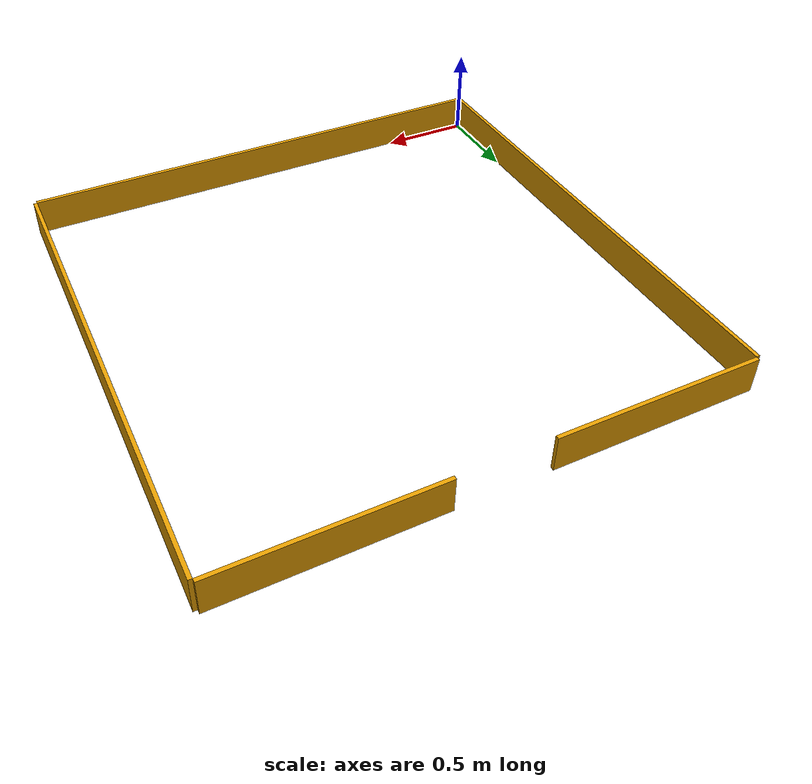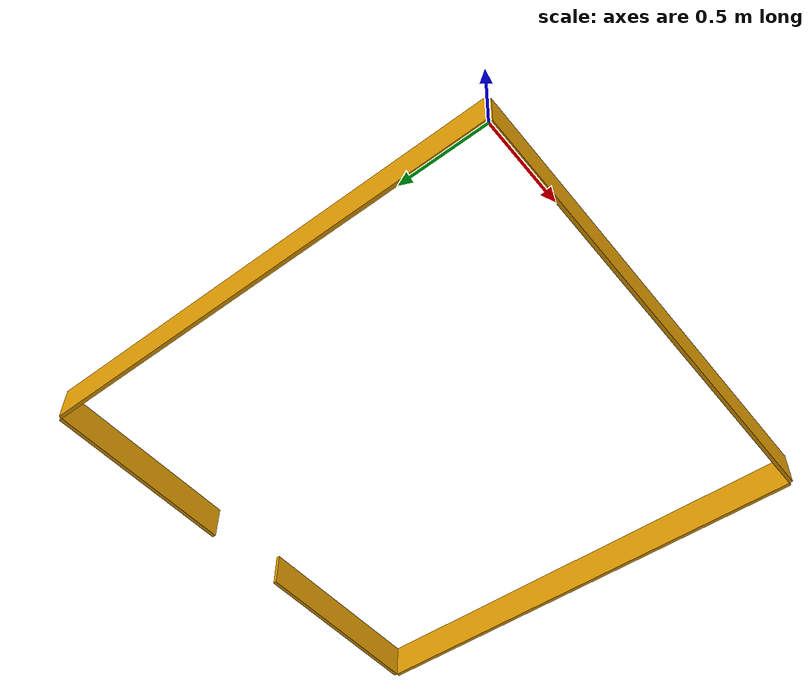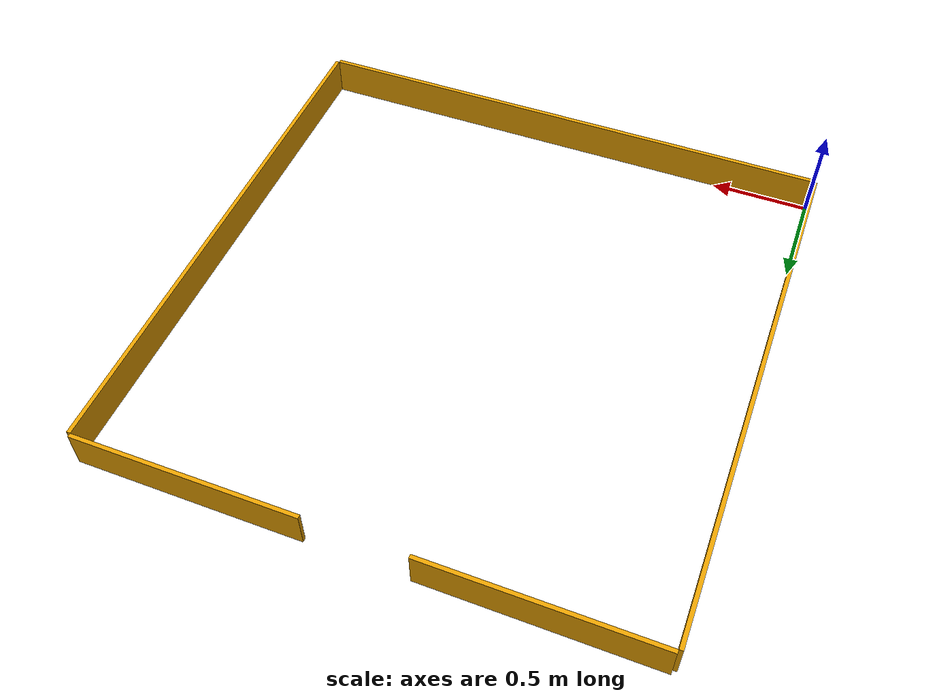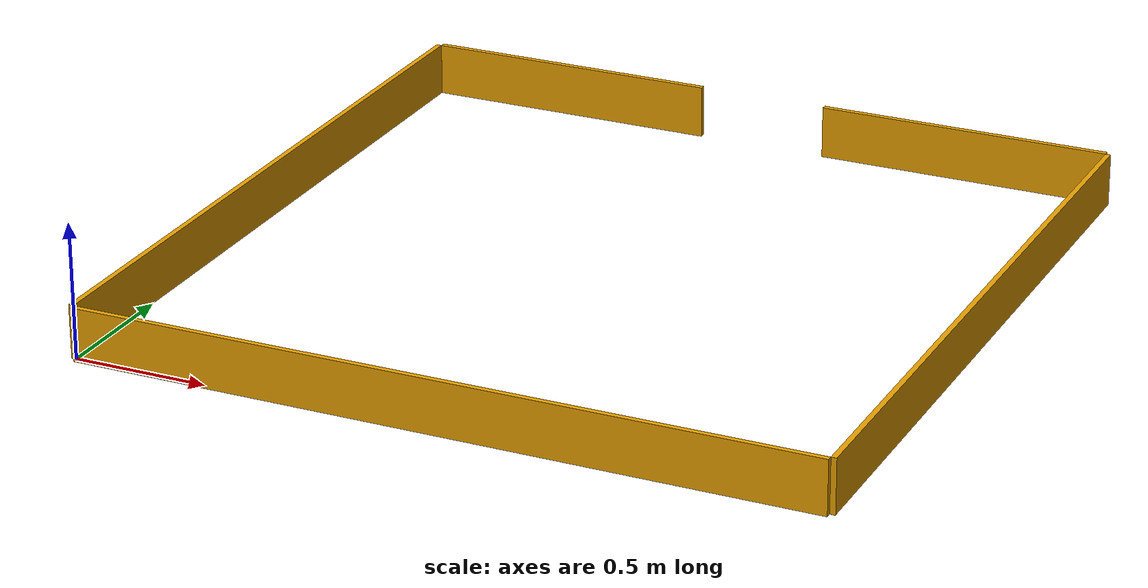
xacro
<?xml version='1.0'?>
<!-- emptyroom_9x9 // URDF MODEL DEFINITION -->

<robot name="emptyroom_9x9" xmlns:xacro="http://www.ros.org/wiki/xacro">

  <xacro:property name="x_dim" value="2.7432" /> <!-- 9ft = 2.7432m -->
  <xacro:property name="y_dim" value="2.7432" />
  <xacro:property name="wall_height" value="0.2" />
  <xacro:property name="wall_thickness" value="0.02" />
  <xacro:property name="exit_width" value="0.5" />

  <xacro:include filename="$(find emptyroom_description)/urdf/emptyroom.gazebo" />

  <link name='walls'>
    <inertial>
      <mass value="0.837"/>
      <inertia
          ixx="0.0007576" ixy="0" ixz="0"
          iyy="0.0015486" iyz="0"
          izz="0.0017524"
      />
    </inertial>

    <collision name='wall_S_collision'>
      <origin xyz="${x_dim/2} ${-wall_thickness/2} ${wall_height/2}" rpy="0 0 0"/>
      <geometry>
        <box size="${x_dim} ${wall_thickness} ${wall_height}"/>
      </geometry>
    </collision>
    <visual name='wall_S_visual'>
      <origin xyz="${x_dim/2} ${-wall_thickness/2} ${wall_height/2}" rpy="0 0 0"/>
      <geometry>
        <box size="${x_dim} ${wall_thickness} ${wall_height}"/>
      </geometry>
    </visual>

    <collision name='wall_E_collision'>
      <origin xyz="${x_dim+wall_thickness/2} ${y_dim/2} ${wall_height/2}" rpy="0 0 0"/>
      <geometry>
        <box size="${wall_thickness} ${y_dim} ${wall_height}"/>
      </geometry>
    </collision>
    <visual name='wall_E_visual'>
      <origin xyz="${x_dim+wall_thickness/2} ${y_dim/2} ${wall_height/2}" rpy="0 0 0"/>
      <geometry>
        <box size="${wall_thickness} ${y_dim} ${wall_height}"/>
      </geometry>
    </visual>

    <collision name='wall_NE_collision'>
      <origin xyz="${x_dim-(x_dim-exit_width)/4} ${y_dim+wall_thickness/2} ${wall_height/2}" rpy="0 0 0"/>
      <geometry>
        <box size="${(x_dim-exit_width)/2} ${wall_thickness} ${wall_height}"/>
      </geometry>
    </collision>
    <visual name='wall_NE_visual'>
      <origin xyz="${x_dim-(x_dim-exit_width)/4} ${y_dim+wall_thickness/2} ${wall_height/2}" rpy="0 0 0"/>
      <geometry>
        <box size="${(x_dim-exit_width)/2} ${wall_thickness} ${wall_height}"/>
      </geometry>
    </visual>

    <collision name='wall_NW_collision'>
      <origin xyz="${(x_dim-exit_width)/4} ${y_dim+wall_thickness/2} ${wall_height/2}" rpy="0 0 0"/>
      <geometry>
        <box size="${(x_dim-exit_width)/2} ${wall_thickness} ${wall_height}"/>
      </geometry>
    </collision>
    <visual name='wall_NW_visual'>
      <origin xyz="${(x_dim-exit_width)/4} ${y_dim+wall_thickness/2} ${wall_height/2}" rpy="0 0 0"/>
      <geometry>
        <box size="${(x_dim-exit_width)/2} ${wall_thickness} ${wall_height}"/>
      </geometry>
    </visual>

    <collision name='wall_W_collision'>
      <origin xyz="${-wall_thickness/2} ${y_dim/2} ${wall_height/2}" rpy="0 0 0"/>
      <geometry>
        <box size="${wall_thickness} ${y_dim} ${wall_height}"/>
      </geometry>
    </collision>
    <visual name='wall_W_visual'>
      <origin xyz="${-wall_thickness/2} ${y_dim/2} ${wall_height/2}" rpy="0 0 0"/>
      <geometry>
        <box size="${wall_thickness} ${y_dim} ${wall_height}"/>
      </geometry>
    </visual>
  </link>

</robot>
